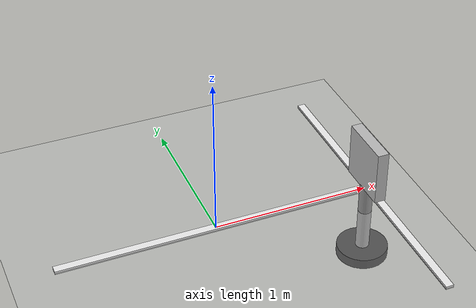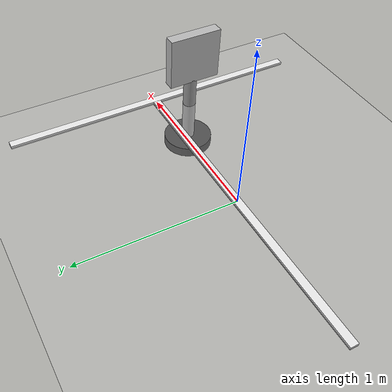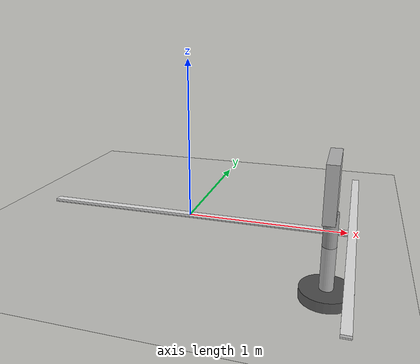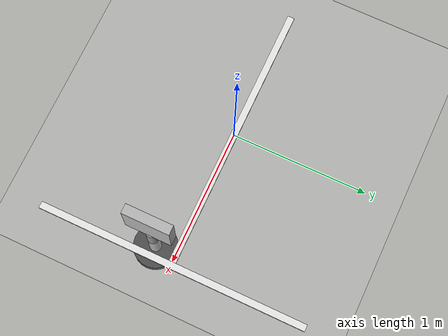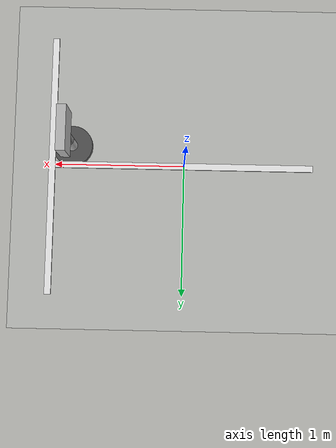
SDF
<?xml version="1.0" ?>
<sdf version="1.5">
  <world name="default">
    <!-- A global light source -->
    <include>
      <uri>model://sun</uri>
    </include>
    <!-- A ground plane -->
    <include>
      <uri>model://ground_plane</uri>
    </include>

    <!-- sign_board_30_small -->
    <include>
        <uri>model://sign_left_turn</uri>
        <pose>0.9 -0.2 0 0 0 0</pose>
    </include>
    <!-- Line Test 1 -->
    <include>
        <uri>model://line2</uri>
        <name>line_1</name>
        <pose>0 0 0 0 0 0</pose>
      </include>
    <!-- Line Test 2 -->
    <include>
        <uri>model://line2</uri>
        <name>line_2</name>
        <pose>1.025 0 0 0 0 1.57</pose>
    </include>
  </world>
</sdf>

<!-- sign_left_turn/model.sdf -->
<sdf version='1.7'>
  <model name='sign_left_turn'>
    <link name='link_0'>
      <inertial>
        <mass>0.00689886</mass>
        <inertia>
          <ixx>4.77026e-05</ixx>
          <ixy>0</ixy>
          <ixz>0</ixz>
          <iyy>4.77026e-05</iyy>
          <iyz>0</iyz>
          <izz>9.04191e-05</izz>
        </inertia>
        <pose>0 0 0 0 -0 0</pose>
      </inertial>
      <pose>0.004049 0.007882 -0.308682 0 -0 0</pose>
      <visual name='visual'>
        <pose>0 0 0 0 -0 0</pose>
        <geometry>
          <cylinder>
            <radius>0.161904</radius>
            <length>0.0658517</length>
          </cylinder>
        </geometry>
        <material>
          <lighting>1</lighting>
          <script>
            <uri>file://media/materials/scripts/gazebo.material</uri>
            <name>Gazebo/Black</name>
          </script>
          <shader type='pixel'/>
          <emissive>0 0 0 1</emissive>
        </material>
        <transparency>0</transparency>
        <cast_shadows>1</cast_shadows>
      </visual>
      <collision name='collision'>
        <laser_retro>0</laser_retro>
        <max_contacts>10</max_contacts>
        <pose>0 0 0 0 -0 0</pose>
        <geometry>
          <cylinder>
            <radius>0.161904</radius>
            <length>0.065852</length>
          </cylinder>
        </geometry>
        <surface>
          <friction>
            <ode>
              <mu>1</mu>
              <mu2>1</mu2>
              <fdir1>0 0 0</fdir1>
              <slip1>0</slip1>
              <slip2>0</slip2>
            </ode>
            <torsional>
              <coefficient>1</coefficient>
              <patch_radius>0</patch_radius>
              <surface_radius>0</surface_radius>
              <use_patch_radius>1</use_patch_radius>
              <ode>
                <slip>0</slip>
              </ode>
            </torsional>
          </friction>
          <bounce>
            <restitution_coefficient>0</restitution_coefficient>
            <threshold>1e+06</threshold>
          </bounce>
          <contact>
            <collide_without_contact>0</collide_without_contact>
            <collide_without_contact_bitmask>1</collide_without_contact_bitmask>
            <collide_bitmask>1</collide_bitmask>
            <ode>
              <soft_cfm>0</soft_cfm>
              <soft_erp>0.2</soft_erp>
              <kp>1e+13</kp>
              <kd>1</kd>
              <max_vel>0.01</max_vel>
              <min_depth>0</min_depth>
            </ode>
            <bullet>
              <split_impulse>1</split_impulse>
              <split_impulse_penetration_threshold>-0.01</split_impulse_penetration_threshold>
              <soft_cfm>0</soft_cfm>
              <soft_erp>0.2</soft_erp>
              <kp>1e+13</kp>
              <kd>1</kd>
            </bullet>
          </contact>
        </surface>
      </collision>
    </link>
    <link name='link_1'>
      <inertial>
        <mass>0.000371732</mass>
        <inertia>
          <ixx>8.63892e-05</ixx>
          <ixy>0</ixy>
          <ixz>0</ixz>
          <iyy>8.63892e-05</iyy>
          <iyz>0</iyz>
          <izz>3.30867e-06</izz>
        </inertia>
        <pose>0 0 0 0 -0 0</pose>
      </inertial>
      <pose>0.004049 0.007882 -0.058682 0 -0 0</pose>
      <visual name='visual'>
        <pose>0 0 0 0 -0 0</pose>
        <geometry>
          <cylinder>
            <radius>0.0421917</radius>
            <length>0.523006</length>
          </cylinder>
        </geometry>
        <material>
          <lighting>1</lighting>
          <script>
            <uri>file://media/materials/scripts/gazebo.material</uri>
            <name>Gazebo/Grey</name>
          </script>
          <shader type='pixel'/>
          <emissive>0 0 0 1</emissive>
        </material>
        <transparency>0</transparency>
        <cast_shadows>1</cast_shadows>
      </visual>
      <collision name='collision'>
        <laser_retro>0</laser_retro>
        <max_contacts>10</max_contacts>
        <pose>0 0 0 0 -0 0</pose>
        <geometry>
          <cylinder>
            <radius>0.042192</radius>
            <length>0.523006</length>
          </cylinder>
        </geometry>
        <surface>
          <friction>
            <ode>
              <mu>1</mu>
              <mu2>1</mu2>
              <fdir1>0 0 0</fdir1>
              <slip1>0</slip1>
              <slip2>0</slip2>
            </ode>
            <torsional>
              <coefficient>1</coefficient>
              <patch_radius>0</patch_radius>
              <surface_radius>0</surface_radius>
              <use_patch_radius>1</use_patch_radius>
              <ode>
                <slip>0</slip>
              </ode>
            </torsional>
          </friction>
          <bounce>
            <restitution_coefficient>0</restitution_coefficient>
            <threshold>1e+06</threshold>
          </bounce>
          <contact>
            <collide_without_contact>0</collide_without_contact>
            <collide_without_contact_bitmask>1</collide_without_contact_bitmask>
            <collide_bitmask>1</collide_bitmask>
            <ode>
              <soft_cfm>0</soft_cfm>
              <soft_erp>0.2</soft_erp>
              <kp>1e+13</kp>
              <kd>1</kd>
              <max_vel>0.01</max_vel>
              <min_depth>0</min_depth>
            </ode>
            <bullet>
              <split_impulse>1</split_impulse>
              <split_impulse_penetration_threshold>-0.01</split_impulse_penetration_threshold>
              <soft_cfm>0</soft_cfm>
              <soft_erp>0.2</soft_erp>
              <kp>1e+13</kp>
              <kd>1</kd>
            </bullet>
          </contact>
        </surface>
      </collision>
    </link>
    <link name='link_2'>
      <inertial>
        <mass>0.000803864</mass>
        <inertia>
          <ixx>0.000152874</ixx>
          <ixy>0</ixy>
          <ixz>0</ixz>
          <iyy>7.89053e-05</iyy>
          <iyz>0</iyz>
          <izz>8.06245e-05</izz>
        </inertia>
        <pose>0 0 0 0 -0 0</pose>
      </inertial>
      <pose>-0.001489 -0.000392 0.36314 0 -0 0</pose>
      <visual name='visual'>
        <pose>0 0 0 0 -0 0</pose>
        <geometry>
          <box>
            <size>0.070481 0.339688 0.335889</size>
          </box>
        </geometry>

        <material>
          <script>
            <uri>model://sign_left_turn/materials/scripts</uri>
            <uri>model://sign_left_turn/materials/textures</uri>
            <name>sign_left_turn/Diffuse</name>
          </script>
        </material>

        <transparency>0</transparency>
        <cast_shadows>1</cast_shadows>
      </visual>
      <collision name='collision'>
        <laser_retro>0</laser_retro>
        <max_contacts>10</max_contacts>
        <pose>0 0 0 0 -0 0</pose>
        <geometry>
          <box>
            <size>0.070481 0.339688 0.335889</size>
          </box>
        </geometry>
        <surface>
          <friction>
            <ode>
              <mu>1</mu>
              <mu2>1</mu2>
              <fdir1>0 0 0</fdir1>
              <slip1>0</slip1>
              <slip2>0</slip2>
            </ode>
            <torsional>
              <coefficient>1</coefficient>
              <patch_radius>0</patch_radius>
              <surface_radius>0</surface_radius>
              <use_patch_radius>1</use_patch_radius>
              <ode>
                <slip>0</slip>
              </ode>
            </torsional>
          </friction>
          <bounce>
            <restitution_coefficient>0</restitution_coefficient>
            <threshold>1e+06</threshold>
          </bounce>
          <contact>
            <collide_without_contact>0</collide_without_contact>
            <collide_without_contact_bitmask>1</collide_without_contact_bitmask>
            <collide_bitmask>1</collide_bitmask>
            <ode>
              <soft_cfm>0</soft_cfm>
              <soft_erp>0.2</soft_erp>
              <kp>1e+13</kp>
              <kd>1</kd>
              <max_vel>0.01</max_vel>
              <min_depth>0</min_depth>
            </ode>
            <bullet>
              <split_impulse>1</split_impulse>
              <split_impulse_penetration_threshold>-0.01</split_impulse_penetration_threshold>
              <soft_cfm>0</soft_cfm>
              <soft_erp>0.2</soft_erp>
              <kp>1e+13</kp>
              <kd>1</kd>
            </bullet>
          </contact>
        </surface>
      </collision>
    </link>
    <joint name='link_0_JOINT_0' type='fixed'>
      <parent>link_0</parent>
      <child>link_1</child>
      <pose>0 0 0 0 -0 0</pose>
      <physics>
        <ode>
          <limit>
            <cfm>0</cfm>
            <erp>0.2</erp>
          </limit>
          <suspension>
            <cfm>0</cfm>
            <erp>0.2</erp>
          </suspension>
        </ode>
      </physics>
    </joint>
    <joint name='link_1_JOINT_1' type='fixed'>
      <parent>link_1</parent>
      <child>link_2</child>
      <pose>0 0 0 0 -0 0</pose>
      <physics>
        <ode>
          <limit>
            <cfm>0</cfm>
            <erp>0.2</erp>
          </limit>
          <suspension>
            <cfm>0</cfm>
            <erp>0.2</erp>
          </suspension>
        </ode>
      </physics>
    </joint>
    <static>0</static>
    <allow_auto_disable>1</allow_auto_disable>
  </model>
</sdf>

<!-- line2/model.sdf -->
<sdf version='1.7'>
  <model name='line2'>
    <link name='link_0'>
      <inertial>
        <mass>0.00242951</mass>
        <inertia>
          <ixx>7.87473e-07</ixx>
          <ixy>0</ixy>
          <ixz>0</ixz>
          <iyy>0.000801245</iyy>
          <iyz>0</iyz>
          <izz>0.00080186</izz>
        </inertia>
        <pose>0 0 0 0 -0 0</pose>
      </inertial>
      <pose>-0 -0 -0 0 -0 0</pose>
      <visual name='visual'>
        <pose>0 0 0 0 -0 0</pose>
        <geometry>
          <box>
            <size>2 0.05 0.02</size>
          </box>
        </geometry>
        <material>
          <lighting>1</lighting>
          <script>
            <uri>file://media/materials/scripts/gazebo.material</uri>
            <name>Gazebo/White</name>
          </script>
          <shader type='pixel'/>
        </material>
        <transparency>0</transparency>
        <cast_shadows>1</cast_shadows>
      </visual>
      <collision name='collision'>
        <laser_retro>0</laser_retro>
        <max_contacts>10</max_contacts>
        <pose>0 0 0 0 -0 0</pose>
        <geometry>
          <box>
            <size>1.98926 0.058851 0.020641</size>
          </box>
        </geometry>
        <surface>
          <friction>
            <ode>
              <mu>1</mu>
              <mu2>1</mu2>
              <fdir1>0 0 0</fdir1>
              <slip1>0</slip1>
              <slip2>0</slip2>
            </ode>
            <torsional>
              <coefficient>1</coefficient>
              <patch_radius>0</patch_radius>
              <surface_radius>0</surface_radius>
              <use_patch_radius>1</use_patch_radius>
              <ode>
                <slip>0</slip>
              </ode>
            </torsional>
          </friction>
          <bounce>
            <restitution_coefficient>0</restitution_coefficient>
            <threshold>1e+06</threshold>
          </bounce>
          <contact>
            <collide_without_contact>0</collide_without_contact>
            <collide_without_contact_bitmask>1</collide_without_contact_bitmask>
            <collide_bitmask>1</collide_bitmask>
            <ode>
              <soft_cfm>0</soft_cfm>
              <soft_erp>0.2</soft_erp>
              <kp>1e+13</kp>
              <kd>1</kd>
              <max_vel>0.01</max_vel>
              <min_depth>0</min_depth>
            </ode>
            <bullet>
              <split_impulse>1</split_impulse>
              <split_impulse_penetration_threshold>-0.01</split_impulse_penetration_threshold>
              <soft_cfm>0</soft_cfm>
              <soft_erp>0.2</soft_erp>
              <kp>1e+13</kp>
              <kd>1</kd>
            </bullet>
          </contact>
        </surface>
      </collision>
    </link>
    <static>0</static>
    <allow_auto_disable>1</allow_auto_disable>
  </model>
</sdf>
